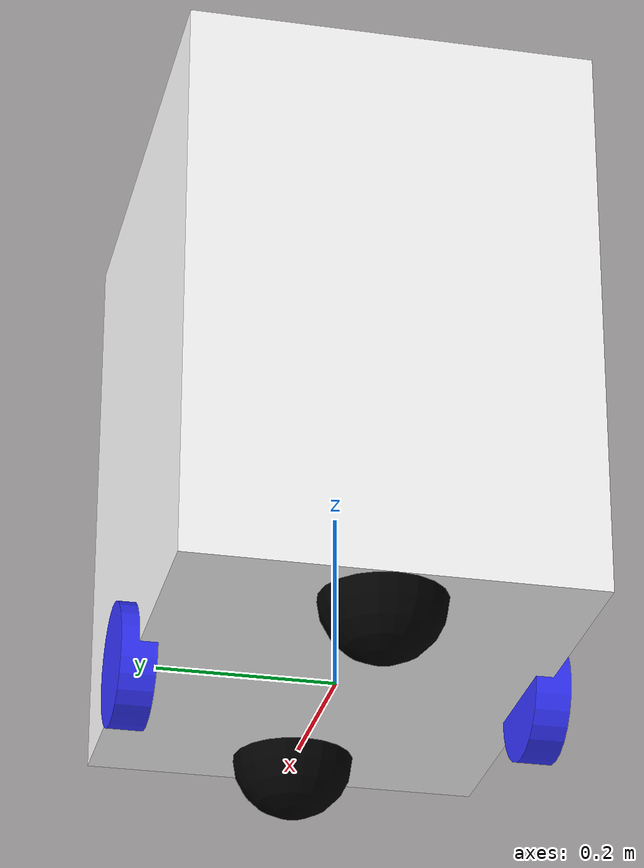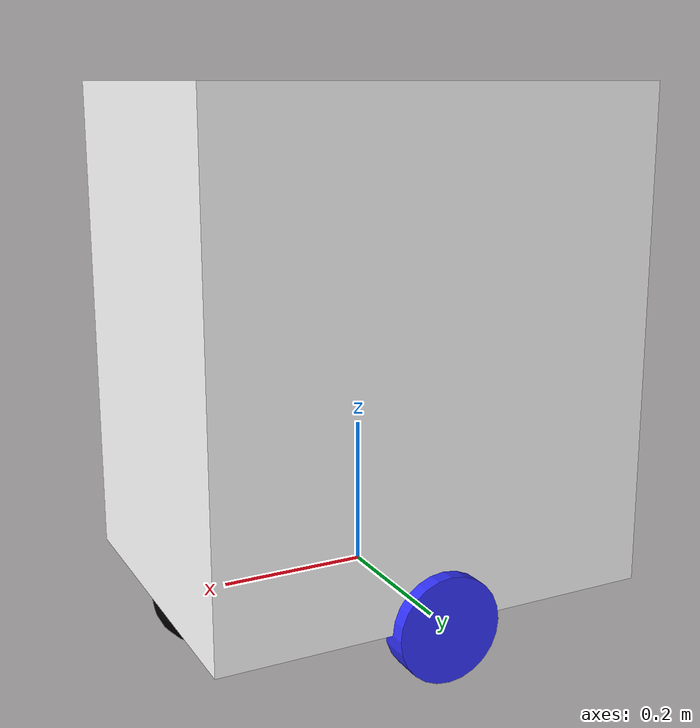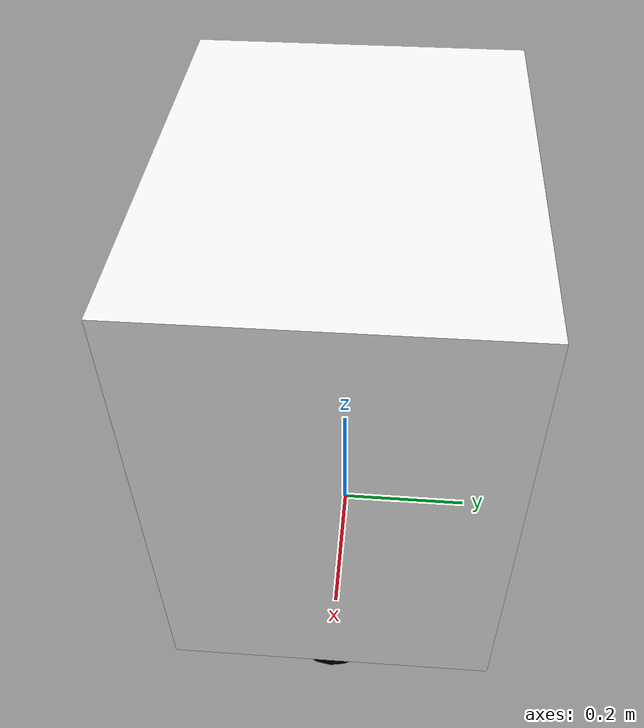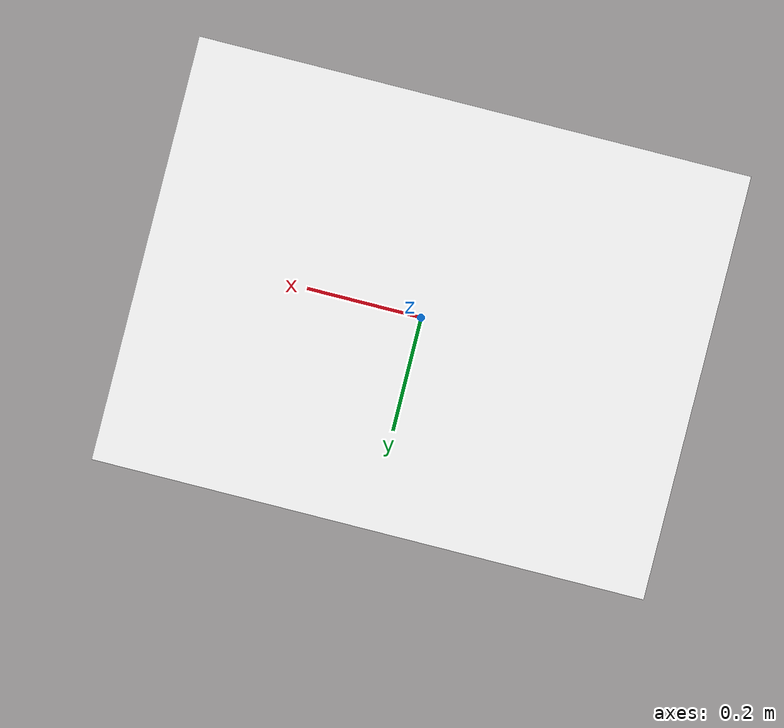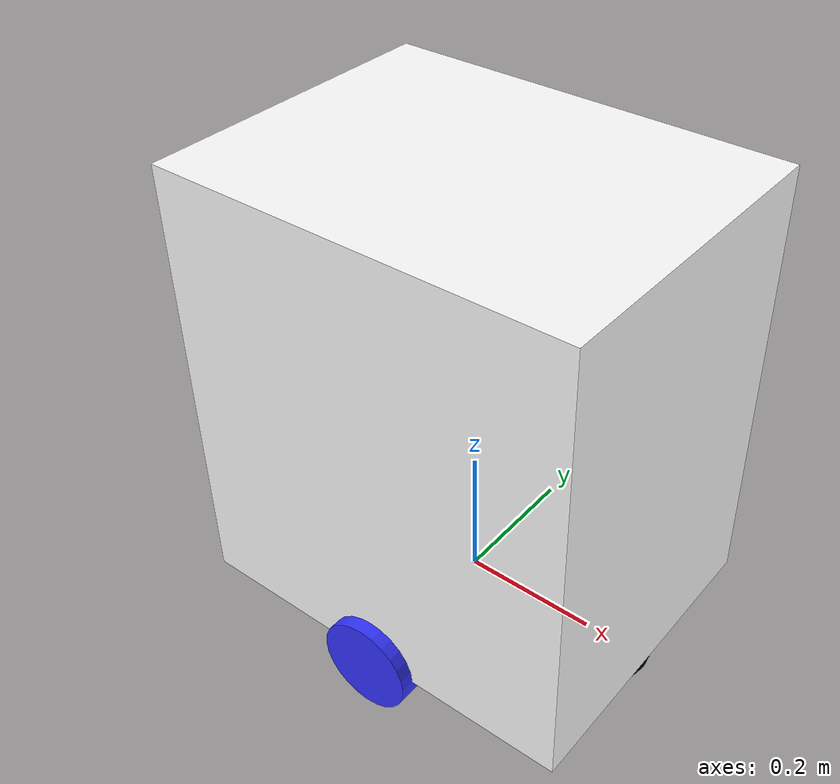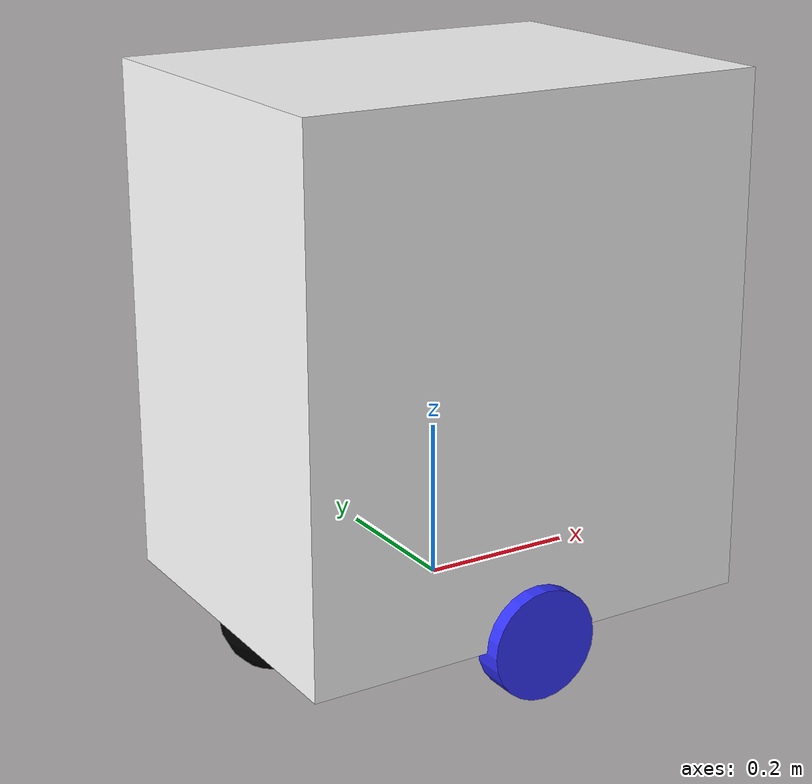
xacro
<?xml version="1.0"?>
<robot xmlns:xacro="http://www.ros.org/wiki/xacro">

    <xacro:include filename="inertial_macros.xacro"/>

    <!-- COLOR -->
    <!-- xFront yLeft zTop -->

    <material name="white">
        <color rgba="1 1 1 1"/>
    </material>

    <material name="orange">
        <color rgba="1 0.3 0.1 1"/>
    </material>

    <material name="blue">
        <color rgba="0.2 0.2 1 1"/>
    </material>

    <material name="red">
        <color rgba="1 0.2 0.2 1"/>
    </material>

    <material name="black">
        <color rgba="0 0 0 1"/>
    </material>

    <!-- BASE LINK -->

    <link name="base_link">

    </link>

    <!-- CHASSIS LINK -->

    <joint name="chassis_joint" type="fixed">
        <parent link="base_link"/>
        <child link="chassis"/>
        <origin xyz="-0.3 0.0 0.0"/>
    </joint>

    <link name="chassis">
        <visual>
            <origin xyz="0.3 0.0 0.33"/>
            <geometry>
                <box size="0.6 0.46 0.66"/>
            </geometry>
            <material name="white"/>
        </visual>
        <collision>
            <origin xyz="0.3 0.0 0.33"/>
            <geometry>
                <box size="0.6 0.46 0.66"/>
            </geometry>
        </collision>
        <xacro:inertial_box mass="10.0" x="0.6" y="0.46" z="0.66">
            <origin xyz="0.3 0.0 0.33" rpy="0.0 0.0 0.0"/>
        </xacro:inertial_box>
    </link>

    <gazebo reference="chassis">
        <material>
            Gazebo/White
        </material>
    </gazebo>

    <!-- LEFT WHEEL LINK -->

    <joint name="left_wheel_joint" type="continuous">
        <parent link="base_link"/>
        <child link="left_wheel"/>
        <origin xyz="0.0 0.23 0.0" rpy="-${pi/2} 0.0 0.0"/>
        <axis xyz="0.0 0.0 1"/>
    </joint>

    <link name="left_wheel">
        <visual>
            <geometry>
                <cylinder radius="0.07" length="0.04"/>
            </geometry>
            <material name="blue"/>
        </visual>
        <collision>
            <geometry>
                <sphere radius="0.07"/>
            </geometry>
        </collision>
        <xacro:inertial_cylinder mass="0.3" length="0.04" radius="0.07">
            <origin xyz="0 0 0" rpy="0.0 0.0 0.0"/>
        </xacro:inertial_cylinder>
    </link>

    <gazebo reference="left_wheel">
        <material>
            Gazebo/Blue
        </material>
    </gazebo>

    <!-- RIGHT WHEEL LINK -->

    <joint name="right_wheel_joint" type="continuous">
        <parent link="base_link"/>
        <child link="right_wheel"/>
        <origin xyz="0.0 -0.23 0.0" rpy="${pi/2} 0.0 0.0"/>
        <axis xyz="0.0 0.0 -1"/>
    </joint>

    <link name="right_wheel">
        <visual>
            <geometry>
                <cylinder radius="0.07" length="0.04"/>
            </geometry>
            <material name="blue"/>
        </visual>
        <collision>
            <geometry>
                <sphere radius="0.07"/>
            </geometry>
        </collision>
        <xacro:inertial_cylinder mass="0.3" length="0.04" radius="0.07">
            <origin xyz="0 0 0" rpy="0.0 0.0 0.0"/>
        </xacro:inertial_cylinder>
    </link>

    <gazebo reference="right_wheel">
        <material>
            Gazebo/Blue
        </material>
    </gazebo>

    <!-- FRONT CASTER WHEEL LINK -->

    <joint name="front_caster_wheel_link" type="fixed">
        <parent link="chassis"/>
        <child link="front_caster_wheel"/>
        <origin xyz="0.53 0.0 0.0"/>
    </joint>

    <link name="front_caster_wheel">
        <visual>
            <geometry>
                <sphere radius="0.07"/>
            </geometry>
            <material name="black"/>
        </visual>
        <collision>
            <geometry>
                <sphere radius="0.07"/>
            </geometry>
        </collision>
        <xacro:inertial_sphere mass="0.2" radius="0.07">
            <origin xyz="0 0 0" rpy="0.0 0.0 0.0"/>
        </xacro:inertial_sphere>
    </link>

    <gazebo reference="front_caster_wheel">
        <material>
            Gazebo/Black
        </material>
        <mu1 value="0.001"/>
        <mu2 value="0.001"/>
    </gazebo>

    <!-- BACK CASTER WHEEL LINK -->

    <joint name="back_caster_wheel_link" type="fixed">
        <parent link="chassis"/>
        <child link="back_caster_wheel"/>
        <origin xyz="0.07 0.0 0.0"/>
    </joint>

    <link name="back_caster_wheel">
        <visual>
            <geometry>
                <sphere radius="0.07"/>
            </geometry>
            <material name="black"/>
        </visual>
        <collision>
            <geometry>
                <sphere radius="0.07"/>
            </geometry>
        </collision>
        <xacro:inertial_sphere mass="0.2" radius="0.07">
            <origin xyz="0 0 0" rpy="0.0 0.0 0.0"/>
        </xacro:inertial_sphere>
    </link>

    <gazebo reference="back_caster_wheel">
        <material>Gazebo/Black</material>
        <mu1 value="0.001"/>
        <mu2 value="0.001"/>
    </gazebo>

</robot>
